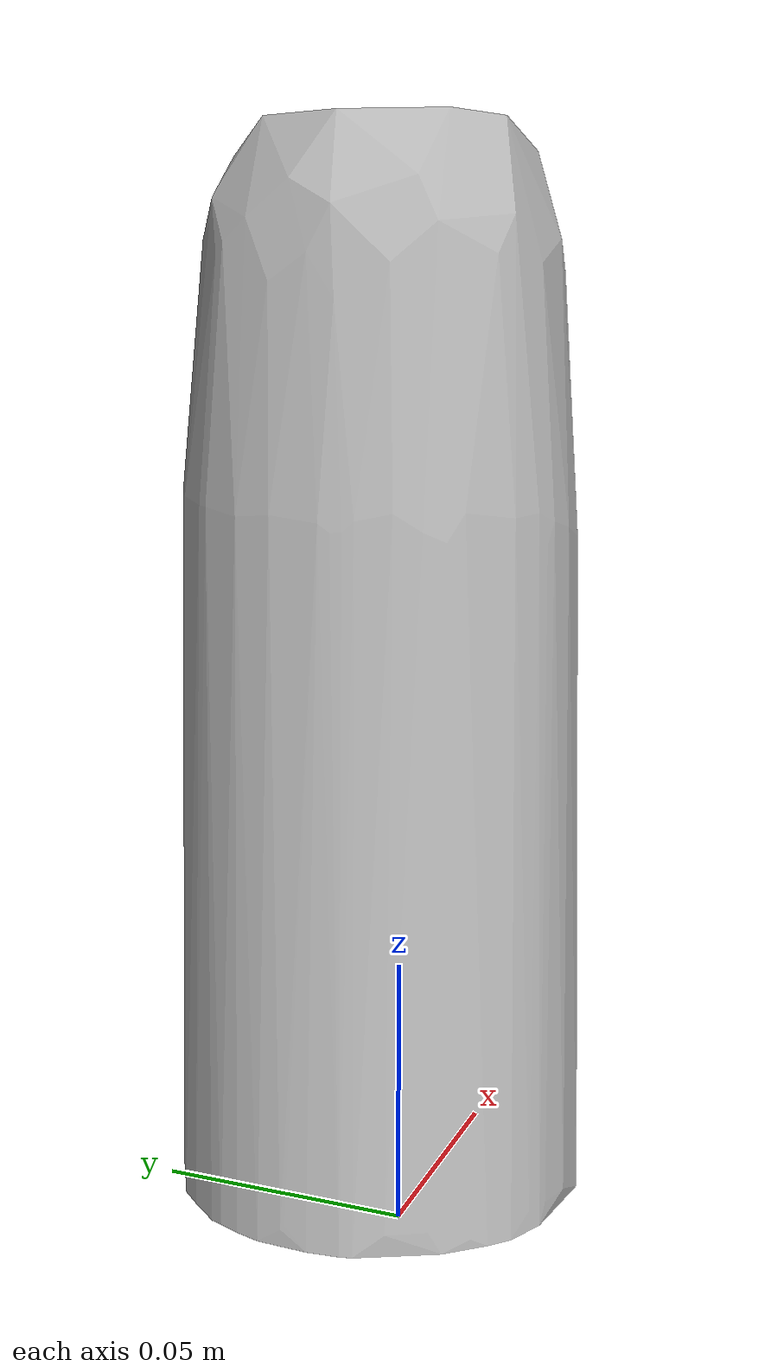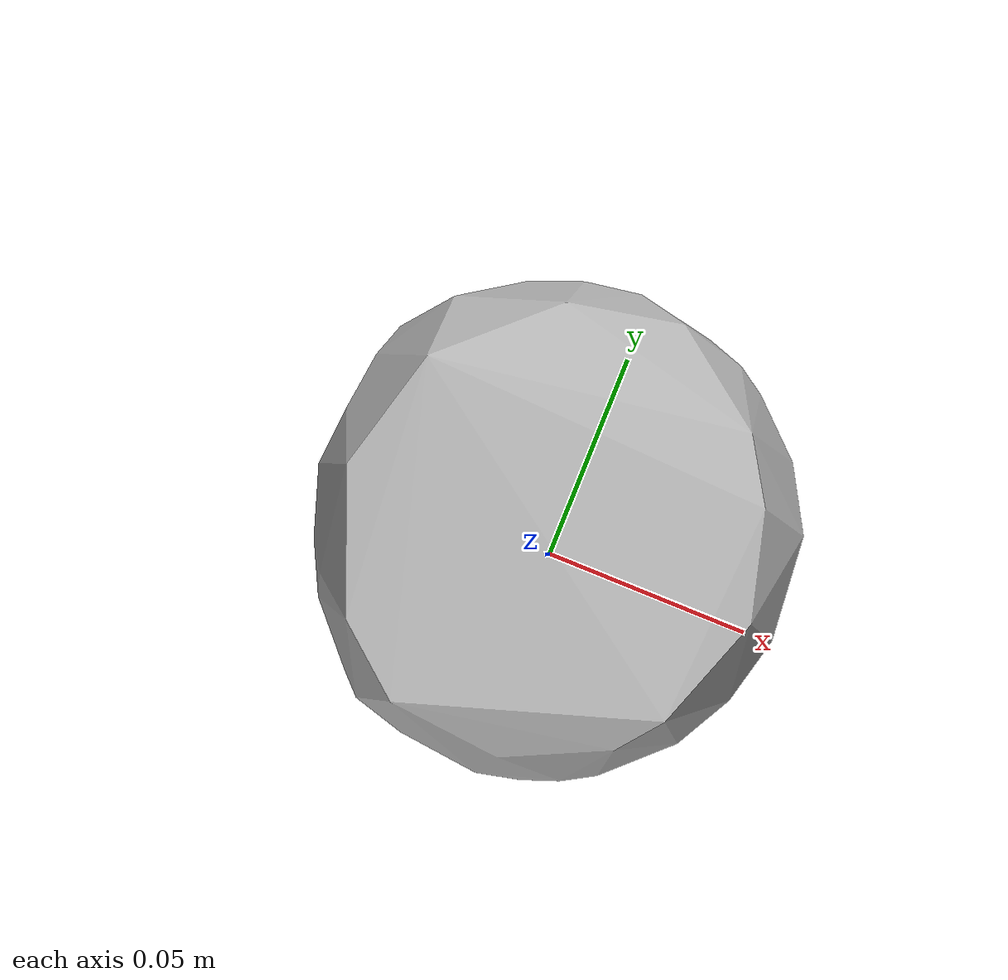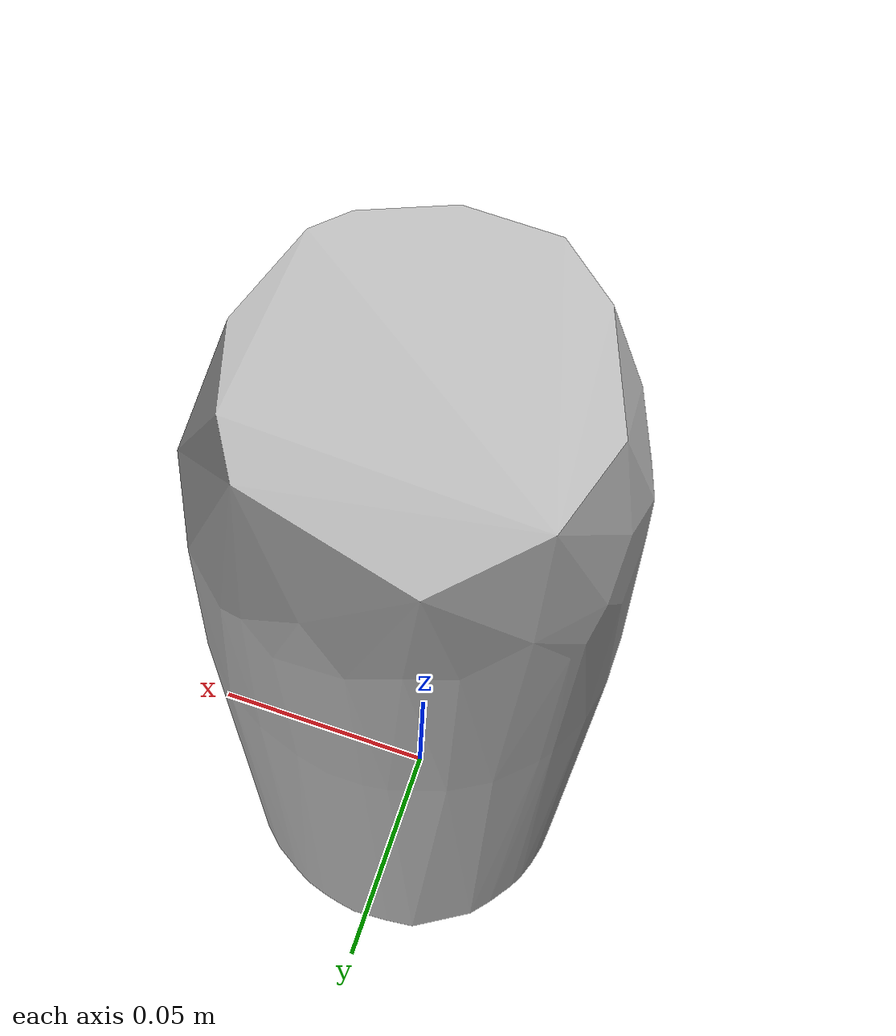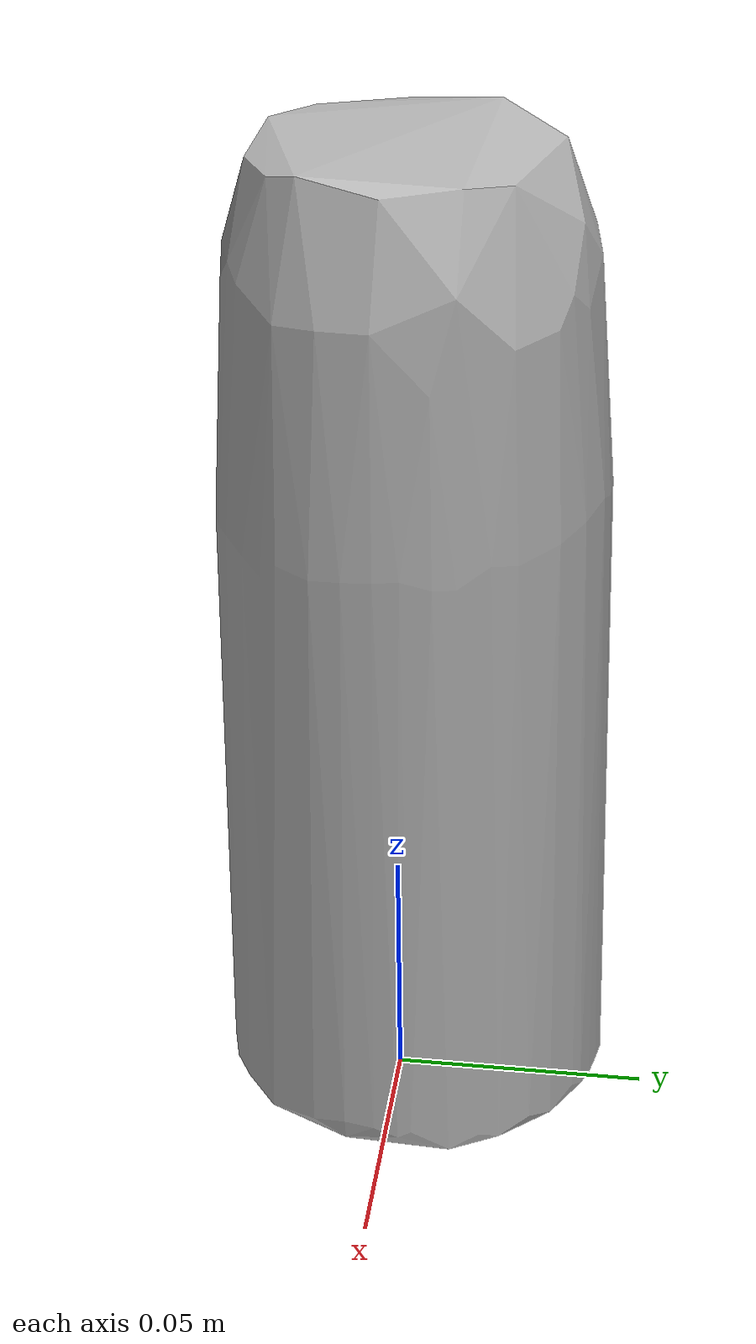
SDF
<?xml version='1.0'?>
<sdf version="1.4">
  <model name="krylon_crystal_clear">
    <static>false</static>
    <link name="link">
      <inertial>
        <pose>0.0020068765384602372 0.004008499216895576 0.09556450325209667 3.13071917704137 -0.007063698670567736 0.4706912377911772</pose>
        <mass>0.04740024852033814</mass>
        <inertia>
          <ixx>0.00025617448335897157</ixx>
          <ixy>3.2029752990017393e-20</ixy>
          <ixz>-2.9049546946949857e-21</ixz>
          <iyy>0.00025337628770208615</iyy>
          <iyz>3.662118975337293e-21</iyz>
          <izz>5.0203120443050167e-05</izz>
        </inertia>
      </inertial>
      <collision name="collision">
        <geometry>
          <mesh>
            <!-- Use a downsampled mesh for collisions -->
            <uri>model:///krylon_crystal_clear/krylon_crystal_clear_250_collision.obj</uri>
	        </mesh>
        </geometry>
        <surface>
      </surface>
      </collision>
      <visual name="visual">
        <geometry>
          <mesh>
            <uri>model:///krylon_crystal_clear/optimized_tsdf_texture_mapped_mesh.obj</uri>
	        </mesh>
        </geometry>
        <material>
          <script>
            <uri>model:///krylon_crystal_clear/krylon_crystal_clear.material</uri>
            <name>krylon_crystal_clear</name>
          </script>
        </material>
      </visual>
    </link>
  </model>
</sdf>
